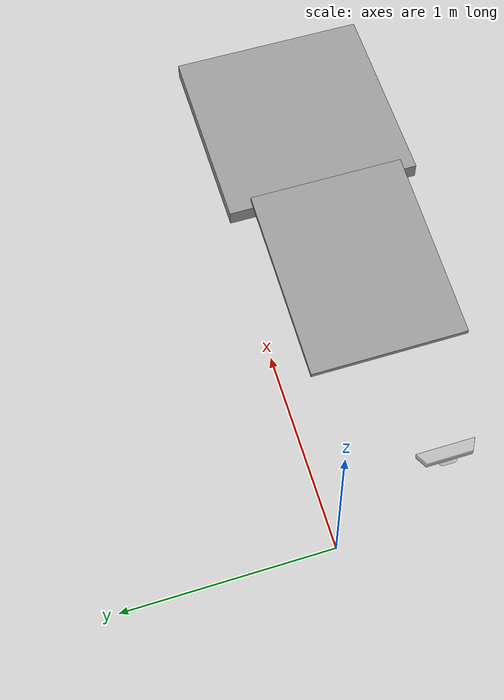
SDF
<sdf version="1.6">
 <world name="default">
  <light name="sun" type="directional">
   <pose>0 0 10 0 -0 0</pose>
   <diffuse>0.8 0.8 0.8 1</diffuse>
   <specular>0.2 0.2 0.2 1</specular>
   <attenuation>
    <range>1000</range>
    <constant>0.9</constant>
    <linear>0.01</linear>
    <quadratic>0.001</quadratic>
   </attenuation>
   <direction>-0.5 0.1 -0.9</direction>
  </light>
  <model name="ground_plane">
   <static>1</static>
   <link name="link">
    <collision name="collision">
     <geometry><plane><normal>0 0 1</normal><size>100 100</size></plane></geometry>
     <surface>
      <contact><collide_bitmask>65535</collide_bitmask></contact>
      <friction><ode><mu>100</mu><mu2>50</mu2></ode></friction>
     </surface>
    </collision>
    <visual name="visual">
     <cast_shadows>0</cast_shadows>
     <geometry><plane><normal>0 0 1</normal><size>100 100</size></plane></geometry>
     <material>
      <script><uri>file://media/materials/scripts/gazebo.material</uri><name>Gazebo/Grey</name></script>
     </material>
    </visual>
   </link>
  </model>
  <gravity>0 0 -9.8</gravity>
  <magnetic_field>6e-06 2.3e-05 -4.2e-05</magnetic_field>
  <atmosphere type="adiabatic"/>
  <physics name="default_physics" default="0" type="ode">
   <max_step_size>0.001</max_step_size>
   <real_time_factor>1</real_time_factor>
   <real_time_update_rate>1000</real_time_update_rate>
  </physics>
  <scene><ambient>0.4 0.4 0.4 1</ambient><background>0.7 0.7 0.7 1</background><shadows>1</shadows></scene>
  <spherical_coordinates>
   <surface_model>EARTH_WGS84</surface_model>
   <latitude_deg>0</latitude_deg>
   <longitude_deg>0</longitude_deg>
   <elevation>0</elevation>
   <heading_deg>0</heading_deg>
  </spherical_coordinates>
  <model name="incline">
   <link name="link_0">
    <inertial>
     <mass>1</mass>
     <inertia>
      <ixx>0.166667</ixx>
      <ixy>0</ixy>
      <ixz>0</ixz>
      <iyy>0.166667</iyy>
      <iyz>0</iyz>
      <izz>0.166667</izz>
     </inertia>
    </inertial>
    <pose>0.485816 0.009037 -0.021654 0 -0 0</pose>
    <visual name="visual">
     <geometry><box><size>1 1 0.087</size></box></geometry>
     <material>
      <lighting>1</lighting>
      <script><uri>file://media/materials/scripts/gazebo.material</uri><name>Gazebo/Grey</name></script>
      <shader type="pixel"><normal_map>__default__</normal_map></shader>
      <ambient>0.3 0.3 0.3 1</ambient>
      <diffuse>0.7 0.7 0.7 1</diffuse>
      <specular>0.01 0.01 0.01 1</specular>
      <emissive>0 0 0 1</emissive>
     </material>
    </visual>
    <collision name="collision">
     <geometry><box><size>1 1 0.087</size></box></geometry>
     <surface>
      <friction>
       <ode><mu>1</mu><mu2>1</mu2><fdir1>0 0 0</fdir1><slip1>0</slip1><slip2>0</slip2></ode>
       <torsional>
        <coefficient>1</coefficient>
        <patch_radius>0</patch_radius>
        <surface_radius>0</surface_radius>
        <use_patch_radius>1</use_patch_radius>
        <ode><slip>0</slip></ode>
       </torsional>
      </friction>
      <bounce><restitution_coefficient>0</restitution_coefficient><threshold>1e+06</threshold></bounce>
      <contact>
       <collide_without_contact>0</collide_without_contact>
       <collide_without_contact_bitmask>1</collide_without_contact_bitmask>
       <collide_bitmask>1</collide_bitmask>
       <ode>
        <soft_cfm>0</soft_cfm>
        <soft_erp>0.2</soft_erp>
        <kp>1e+13</kp>
        <kd>1</kd>
        <max_vel>0.01</max_vel>
        <min_depth>0</min_depth>
       </ode>
       <bullet>
        <split_impulse>1</split_impulse>
        <split_impulse_penetration_threshold>-0.01</split_impulse_penetration_threshold>
        <soft_cfm>0</soft_cfm>
        <soft_erp>0.2</soft_erp>
        <kp>1e+13</kp>
        <kd>1</kd>
       </bullet>
      </contact>
     </surface>
    </collision>
   </link>
   <link name="link_0_clone">
    <inertial>
     <mass>0.740738</mass>
     <inertia>
      <ixx>0.0339252</ixx>
      <ixy>0</ixy>
      <ixz>0</ixz>
      <iyy>0.0617837</iyy>
      <iyz>0</iyz>
      <izz>0.0955978</izz>
     </inertia>
    </inertial>
    <pose>-0.485816 -0.009037 0.021654 0 -0 0</pose>
    <visual name="visual">
     <pose>0 0 0 0 -0.08726 0</pose>
     <geometry><box><size>1 0.799999 0.03</size></box></geometry>
     <material>
      <lighting>1</lighting>
      <script><uri>file://media/materials/scripts/gazebo.material</uri><name>Gazebo/Grey</name></script>
      <shader type="pixel"><normal_map>__default__</normal_map></shader>
      <ambient>0.3 0.3 0.3 1</ambient>
      <diffuse>0.7 0.7 0.7 1</diffuse>
      <specular>0.01 0.01 0.01 1</specular>
      <emissive>0 0 0 1</emissive>
     </material>
    </visual>
    <collision name="collision">
     <geometry><box><size>1 0.799999 0.03</size></box></geometry>
     <surface>
      <friction>
       <ode><mu>1</mu><mu2>1</mu2><fdir1>0 0 0</fdir1><slip1>0</slip1><slip2>0</slip2></ode>
       <torsional>
        <coefficient>1</coefficient>
        <patch_radius>0</patch_radius>
        <surface_radius>0</surface_radius>
        <use_patch_radius>1</use_patch_radius>
        <ode><slip>0</slip></ode>
       </torsional>
      </friction>
      <bounce><restitution_coefficient>0</restitution_coefficient><threshold>1e+06</threshold></bounce>
      <contact>
       <collide_without_contact>0</collide_without_contact>
       <collide_without_contact_bitmask>1</collide_without_contact_bitmask>
       <collide_bitmask>1</collide_bitmask>
       <ode>
        <soft_cfm>0</soft_cfm>
        <soft_erp>0.2</soft_erp>
        <kp>1e+13</kp>
        <kd>1</kd>
        <max_vel>0.01</max_vel>
        <min_depth>0</min_depth>
       </ode>
       <bullet>
        <split_impulse>1</split_impulse>
        <split_impulse_penetration_threshold>-0.01</split_impulse_penetration_threshold>
        <soft_cfm>0</soft_cfm>
        <soft_erp>0.2</soft_erp>
        <kp>1e+13</kp>
        <kd>1</kd>
       </bullet>
      </contact>
     </surface>
    </collision>
   </link>
   <static>0</static>
   <pose>1.81761 -0.540045 0.065154 0 -0 0</pose>
  </model>
  <model name="kinect_ros">
   <pose>0.191977 -0.554492 0.330481 0 -0 0</pose>
   <static>1</static>
   <link name="link">
    <inertial><mass>0.1</mass></inertial>
    <collision name="collision"><geometry><box><size>0.073 0.276 0.072</size></box></geometry></collision>
    <visual name="visual"><geometry><mesh><uri>model://kinect/meshes/kinect.dae</uri></mesh></geometry></visual>
    <sensor name="camera" type="depth">
     <update_rate>20</update_rate>
     <camera name="__default__">
      <horizontal_fov>1.0472</horizontal_fov>
      <image><width>640</width><height>480</height><format>R8G8B8</format></image>
      <clip><near>0.05</near><far>3</far></clip>
     </camera>
     <plugin name="camera_plugin" filename="libgazebo_ros_openni_kinect.so">
      <baseline>0.2</baseline>
      <alwaysOn>1</alwaysOn>
      <updateRate>0.0</updateRate>
      <cameraName>camera_ir</cameraName>
      <imageTopicName>/camera/color/image_raw</imageTopicName>
      <cameraInfoTopicName>/camera/color/camera_info</cameraInfoTopicName>
      <depthImageTopciName>/camera/depth/image_raw</depthImageTopciName>
      <depthImageCameraInfoName>/camera/depth/camera_info</depthImageCameraInfoName>
      <pointCloudTopicName>/camera/depth/points</pointCloudTopicName>
      <frameName>camera_link</frameName>
      <pointCloudCutoff>0.5</pointCloudCutoff>
      <pointCloudCutoffMax>3.0</pointCloudCutoffMax>
      <distortionK1>0</distortionK1>
      <distortionK2>0</distortionK2>
      <distortionK3>0</distortionK3>
      <distortionT1>0</distortionT1>
      <distortionT2>0</distortionT2>
      <cxPrime>0</cxPrime>
      <cx>0</cx>
      <cy>0</cy>
      <focalLength>0</focalLength>
      <hackBaseline>0</hackBaseline>
     </plugin>
    </sensor>
   </link>
  </model>
 </world>
</sdf>
